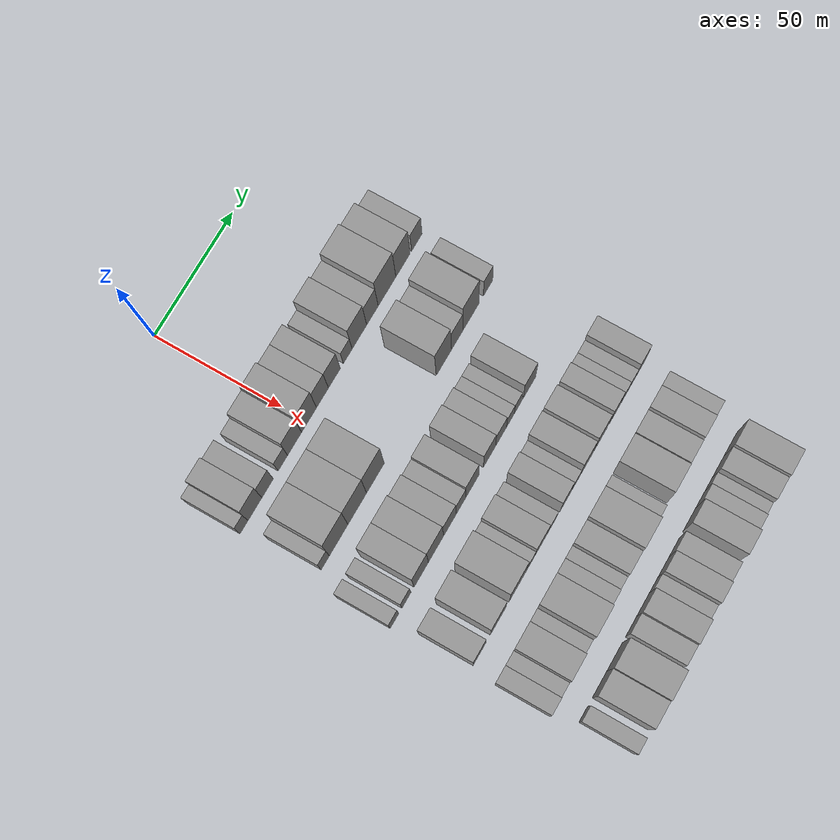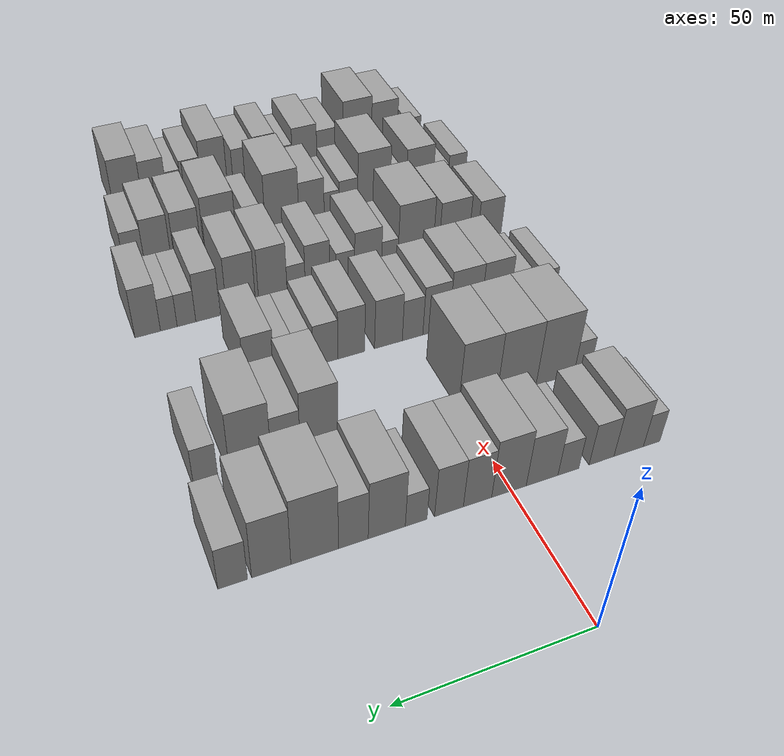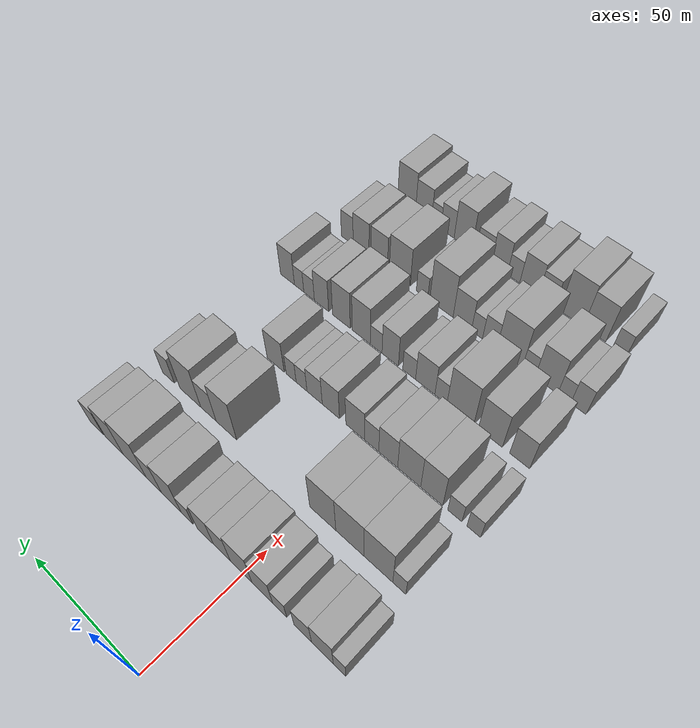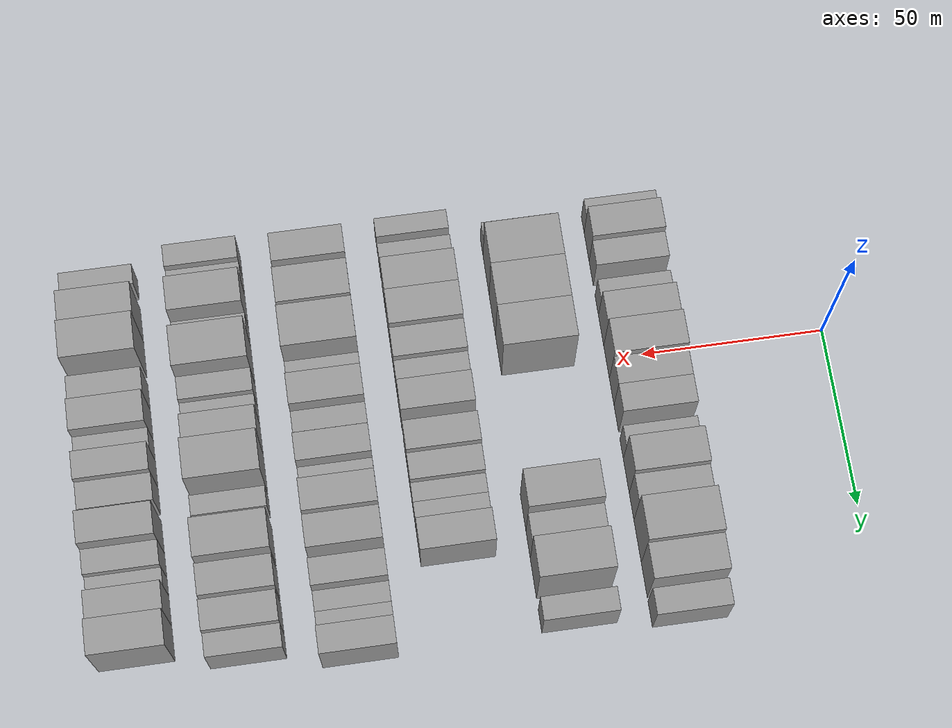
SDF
<sdf version="1.6">
 <world name="default">
  <model name="building_52">
   <static>1</static>
   <pose>50.0000 -40.4594 0 0.000000 0.000000 0.000000</pose>
   <link name="link">
    <pose>0 0 6.00 0 0 0</pose>
    <collision name="collision"><geometry><box><size>20.0000 4.9629 12.0000</size></box></geometry></collision>
    <visual name="visual">
     <cast_shadows>0</cast_shadows>
     <geometry><box><size>20.0000 4.9629 12.0000</size></box></geometry>
     <material>
      <script>
       <uri>model://grey_wall/materials/scripts</uri>
       <uri>model://grey_wall/materials/textures</uri>
       <name>vrc/grey_wall</name>
      </script>
     </material>
    </visual>
   </link>
  </model>
  <model name="building_53">
   <static>1</static>
   <pose>50.0000 -33.5909 0 0.000000 0.000000 0.000000</pose>
   <link name="link">
    <pose>0 0 9.00 0 0 0</pose>
    <collision name="collision"><geometry><box><size>20.0000 8.7740 18.0000</size></box></geometry></collision>
    <visual name="visual">
     <cast_shadows>0</cast_shadows>
     <geometry><box><size>20.0000 8.7740 18.0000</size></box></geometry>
     <material>
      <script>
       <uri>model://grey_wall/materials/scripts</uri>
       <uri>model://grey_wall/materials/textures</uri>
       <name>vrc/grey_wall</name>
      </script>
     </material>
    </visual>
   </link>
  </model>
  <model name="building_54">
   <static>1</static>
   <pose>50.0000 -25.5761 0 0.000000 0.000000 0.000000</pose>
   <link name="link">
    <pose>0 0 7.50 0 0 0</pose>
    <collision name="collision"><geometry><box><size>20.0000 7.2556 15.0000</size></box></geometry></collision>
    <visual name="visual">
     <cast_shadows>0</cast_shadows>
     <geometry><box><size>20.0000 7.2556 15.0000</size></box></geometry>
     <material>
      <script>
       <uri>model://grey_wall/materials/scripts</uri>
       <uri>model://grey_wall/materials/textures</uri>
       <name>vrc/grey_wall</name>
      </script>
     </material>
    </visual>
   </link>
  </model>
  <model name="building_55">
   <static>1</static>
   <pose>50.0000 -15.9511 0 0.000000 0.000000 0.000000</pose>
   <link name="link">
    <pose>0 0 6.00 0 0 0</pose>
    <collision name="collision"><geometry><box><size>20.0000 5.9945 12.0000</size></box></geometry></collision>
    <visual name="visual">
     <cast_shadows>0</cast_shadows>
     <geometry><box><size>20.0000 5.9945 12.0000</size></box></geometry>
     <material>
      <script>
       <uri>model://grey_wall/materials/scripts</uri>
       <uri>model://grey_wall/materials/textures</uri>
       <name>vrc/grey_wall</name>
      </script>
     </material>
    </visual>
   </link>
  </model>
  <model name="building_56">
   <static>1</static>
   <pose>50.0000 -8.4623 0 0.000000 0.000000 0.000000</pose>
   <link name="link">
    <pose>0 0 9.00 0 0 0</pose>
    <collision name="collision"><geometry><box><size>20.0000 8.9830 18.0000</size></box></geometry></collision>
    <visual name="visual">
     <cast_shadows>0</cast_shadows>
     <geometry><box><size>20.0000 8.9830 18.0000</size></box></geometry>
     <material>
      <script>
       <uri>model://grey_wall/materials/scripts</uri>
       <uri>model://grey_wall/materials/textures</uri>
       <name>vrc/grey_wall</name>
      </script>
     </material>
    </visual>
   </link>
  </model>
  <model name="building_57">
   <static>1</static>
   <pose>50.0000 0.8350 0 0.000000 0.000000 0.000000</pose>
   <link name="link">
    <pose>0 0 10.50 0 0 0</pose>
    <collision name="collision"><geometry><box><size>20.0000 9.6116 21.0000</size></box></geometry></collision>
    <visual name="visual">
     <cast_shadows>0</cast_shadows>
     <geometry><box><size>20.0000 9.6116 21.0000</size></box></geometry>
     <material>
      <script>
       <uri>model://grey_wall/materials/scripts</uri>
       <uri>model://grey_wall/materials/textures</uri>
       <name>vrc/grey_wall</name>
      </script>
     </material>
    </visual>
   </link>
  </model>
  <model name="building_58">
   <static>1</static>
   <pose>50.0000 9.5036 0 0.000000 0.000000 0.000000</pose>
   <link name="link">
    <pose>0 0 9.00 0 0 0</pose>
    <collision name="collision"><geometry><box><size>20.0000 7.7256 18.0000</size></box></geometry></collision>
    <visual name="visual">
     <cast_shadows>0</cast_shadows>
     <geometry><box><size>20.0000 7.7256 18.0000</size></box></geometry>
     <material>
      <script>
       <uri>model://grey_wall/materials/scripts</uri>
       <uri>model://grey_wall/materials/textures</uri>
       <name>vrc/grey_wall</name>
      </script>
     </material>
    </visual>
   </link>
  </model>
  <model name="building_59">
   <static>1</static>
   <pose>50.0000 17.2293 0 0.000000 0.000000 0.000000</pose>
   <link name="link">
    <pose>0 0 9.00 0 0 0</pose>
    <collision name="collision"><geometry><box><size>20.0000 7.7257 18.0000</size></box></geometry></collision>
    <visual name="visual">
     <cast_shadows>0</cast_shadows>
     <geometry><box><size>20.0000 7.7257 18.0000</size></box></geometry>
     <material>
      <script>
       <uri>model://grey_wall/materials/scripts</uri>
       <uri>model://grey_wall/materials/textures</uri>
       <name>vrc/grey_wall</name>
      </script>
     </material>
    </visual>
   </link>
  </model>
  <model name="building_60">
   <static>1</static>
   <pose>50.0000 25.9551 0 0.000000 0.000000 0.000000</pose>
   <link name="link">
    <pose>0 0 6.00 0 0 0</pose>
    <collision name="collision"><geometry><box><size>20.0000 5.7260 12.0000</size></box></geometry></collision>
    <visual name="visual">
     <cast_shadows>0</cast_shadows>
     <geometry><box><size>20.0000 5.7260 12.0000</size></box></geometry>
     <material>
      <script>
       <uri>model://grey_wall/materials/scripts</uri>
       <uri>model://grey_wall/materials/textures</uri>
       <name>vrc/grey_wall</name>
      </script>
     </material>
    </visual>
   </link>
  </model>
  <model name="building_61">
   <static>1</static>
   <pose>50.0000 33.6274 0 0.000000 0.000000 0.000000</pose>
   <link name="link">
    <pose>0 0 10.50 0 0 0</pose>
    <collision name="collision"><geometry><box><size>20.0000 9.6186 21.0000</size></box></geometry></collision>
    <visual name="visual">
     <cast_shadows>0</cast_shadows>
     <geometry><box><size>20.0000 9.6186 21.0000</size></box></geometry>
     <material>
      <script>
       <uri>model://grey_wall/materials/scripts</uri>
       <uri>model://grey_wall/materials/textures</uri>
       <name>vrc/grey_wall</name>
      </script>
     </material>
    </visual>
   </link>
  </model>
  <model name="building_62">
   <static>1</static>
   <pose>50.0000 42.2342 0 0.000000 0.000000 0.000000</pose>
   <link name="link">
    <pose>0 0 9.00 0 0 0</pose>
    <collision name="collision"><geometry><box><size>20.0000 7.5950 18.0000</size></box></geometry></collision>
    <visual name="visual">
     <cast_shadows>0</cast_shadows>
     <geometry><box><size>20.0000 7.5950 18.0000</size></box></geometry>
     <material>
      <script>
       <uri>model://grey_wall/materials/scripts</uri>
       <uri>model://grey_wall/materials/textures</uri>
       <name>vrc/grey_wall</name>
      </script>
     </material>
    </visual>
   </link>
  </model>
  <model name="building_63">
   <static>1</static>
   <pose>50.0000 51.9355 0 0.000000 0.000000 0.000000</pose>
   <link name="link">
    <pose>0 0 12.00 0 0 0</pose>
    <collision name="collision"><geometry><box><size>20.0000 11.8077 24.0000</size></box></geometry></collision>
    <visual name="visual">
     <cast_shadows>0</cast_shadows>
     <geometry><box><size>20.0000 11.8077 24.0000</size></box></geometry>
     <material>
      <script>
       <uri>model://grey_wall/materials/scripts</uri>
       <uri>model://grey_wall/materials/textures</uri>
       <name>vrc/grey_wall</name>
      </script>
     </material>
    </visual>
   </link>
  </model>
  <model name="building_64">
   <static>1</static>
   <pose>50.0000 62.6142 0 0.000000 0.000000 0.000000</pose>
   <link name="link">
    <pose>0 0 10.50 0 0 0</pose>
    <collision name="collision"><geometry><box><size>20.0000 9.5495 21.0000</size></box></geometry></collision>
    <visual name="visual">
     <cast_shadows>0</cast_shadows>
     <geometry><box><size>20.0000 9.5495 21.0000</size></box></geometry>
     <material>
      <script>
       <uri>model://grey_wall/materials/scripts</uri>
       <uri>model://grey_wall/materials/textures</uri>
       <name>vrc/grey_wall</name>
      </script>
     </material>
    </visual>
   </link>
  </model>
  <model name="building_65">
   <static>1</static>
   <pose>50.0000 71.9262 0 0.000000 0.000000 0.000000</pose>
   <link name="link">
    <pose>0 0 7.50 0 0 0</pose>
    <collision name="collision"><geometry><box><size>20.0000 7.0747 15.0000</size></box></geometry></collision>
    <visual name="visual">
     <cast_shadows>0</cast_shadows>
     <geometry><box><size>20.0000 7.0747 15.0000</size></box></geometry>
     <material>
      <script>
       <uri>model://grey_wall/materials/scripts</uri>
       <uri>model://grey_wall/materials/textures</uri>
       <name>vrc/grey_wall</name>
      </script>
     </material>
    </visual>
   </link>
  </model>
  <model name="building_163">
   <static>1</static>
   <pose>79.0000 -37.3305 0 0.000000 0.000000 0.000000</pose>
   <link name="link">
    <pose>0 0 6.00 0 0 0</pose>
    <collision name="collision"><geometry><box><size>20.0000 5.2207 12.0000</size></box></geometry></collision>
    <visual name="visual">
     <cast_shadows>0</cast_shadows>
     <geometry><box><size>20.0000 5.2207 12.0000</size></box></geometry>
     <material>
      <script>
       <uri>model://grey_wall/materials/scripts</uri>
       <uri>model://grey_wall/materials/textures</uri>
       <name>vrc/grey_wall</name>
      </script>
     </material>
    </visual>
   </link>
  </model>
  <model name="building_164">
   <static>1</static>
   <pose>79.0000 -28.7968 0 0.000000 0.000000 0.000000</pose>
   <link name="link">
    <pose>0 0 12.00 0 0 0</pose>
    <collision name="collision"><geometry><box><size>20.0000 11.8466 24.0000</size></box></geometry></collision>
    <visual name="visual">
     <cast_shadows>0</cast_shadows>
     <geometry><box><size>20.0000 11.8466 24.0000</size></box></geometry>
     <material>
      <script>
       <uri>model://grey_wall/materials/scripts</uri>
       <uri>model://grey_wall/materials/textures</uri>
       <name>vrc/grey_wall</name>
      </script>
     </material>
    </visual>
   </link>
  </model>
  <model name="building_165">
   <static>1</static>
   <pose>79.0000 -16.8841 0 0.000000 0.000000 0.000000</pose>
   <link name="link">
    <pose>0 0 12.00 0 0 0</pose>
    <collision name="collision"><geometry><box><size>20.0000 11.9790 24.0000</size></box></geometry></collision>
    <visual name="visual">
     <cast_shadows>0</cast_shadows>
     <geometry><box><size>20.0000 11.9790 24.0000</size></box></geometry>
     <material>
      <script>
       <uri>model://grey_wall/materials/scripts</uri>
       <uri>model://grey_wall/materials/textures</uri>
       <name>vrc/grey_wall</name>
      </script>
     </material>
    </visual>
   </link>
  </model>
  <model name="building_166">
   <static>1</static>
   <pose>79.0000 -5.1705 0 0.000000 0.000000 0.000000</pose>
   <link name="link">
    <pose>0 0 12.00 0 0 0</pose>
    <collision name="collision"><geometry><box><size>20.0000 11.4482 24.0000</size></box></geometry></collision>
    <visual name="visual">
     <cast_shadows>0</cast_shadows>
     <geometry><box><size>20.0000 11.4482 24.0000</size></box></geometry>
     <material>
      <script>
       <uri>model://grey_wall/materials/scripts</uri>
       <uri>model://grey_wall/materials/textures</uri>
       <name>vrc/grey_wall</name>
      </script>
     </material>
    </visual>
   </link>
  </model>
  <model name="building_167">
   <static>1</static>
   <pose>79.0000 39.8898 0 0.000000 0.000000 0.000000</pose>
   <link name="link">
    <pose>0 0 12.00 0 0 0</pose>
    <collision name="collision"><geometry><box><size>20.0000 10.2241 24.0000</size></box></geometry></collision>
    <visual name="visual">
     <cast_shadows>0</cast_shadows>
     <geometry><box><size>20.0000 10.2241 24.0000</size></box></geometry>
     <material>
      <script>
       <uri>model://grey_wall/materials/scripts</uri>
       <uri>model://grey_wall/materials/textures</uri>
       <name>vrc/grey_wall</name>
      </script>
     </material>
    </visual>
   </link>
  </model>
  <model name="building_168">
   <static>1</static>
   <pose>79.0000 48.8931 0 0.000000 0.000000 0.000000</pose>
   <link name="link">
    <pose>0 0 9.00 0 0 0</pose>
    <collision name="collision"><geometry><box><size>20.0000 7.7824 18.0000</size></box></geometry></collision>
    <visual name="visual">
     <cast_shadows>0</cast_shadows>
     <geometry><box><size>20.0000 7.7824 18.0000</size></box></geometry>
     <material>
      <script>
       <uri>model://grey_wall/materials/scripts</uri>
       <uri>model://grey_wall/materials/textures</uri>
       <name>vrc/grey_wall</name>
      </script>
     </material>
    </visual>
   </link>
  </model>
  <model name="building_169">
   <static>1</static>
   <pose>79.0000 58.2073 0 0.000000 0.000000 0.000000</pose>
   <link name="link">
    <pose>0 0 12.00 0 0 0</pose>
    <collision name="collision"><geometry><box><size>20.0000 10.8460 24.0000</size></box></geometry></collision>
    <visual name="visual">
     <cast_shadows>0</cast_shadows>
     <geometry><box><size>20.0000 10.8460 24.0000</size></box></geometry>
     <material>
      <script>
       <uri>model://grey_wall/materials/scripts</uri>
       <uri>model://grey_wall/materials/textures</uri>
       <name>vrc/grey_wall</name>
      </script>
     </material>
    </visual>
   </link>
  </model>
  <model name="building_170">
   <static>1</static>
   <pose>79.0000 69.7711 0 0.000000 0.000000 0.000000</pose>
   <link name="link">
    <pose>0 0 7.50 0 0 0</pose>
    <collision name="collision"><geometry><box><size>20.0000 6.2816 15.0000</size></box></geometry></collision>
    <visual name="visual">
     <cast_shadows>0</cast_shadows>
     <geometry><box><size>20.0000 6.2816 15.0000</size></box></geometry>
     <material>
      <script>
       <uri>model://grey_wall/materials/scripts</uri>
       <uri>model://grey_wall/materials/textures</uri>
       <name>vrc/grey_wall</name>
      </script>
     </material>
    </visual>
   </link>
  </model>
  <model name="building_272">
   <static>1</static>
   <pose>108.0000 -42.4587 0 0.000000 0.000000 0.000000</pose>
   <link name="link">
    <pose>0 0 6.00 0 0 0</pose>
    <collision name="collision"><geometry><box><size>20.0000 5.4867 12.0000</size></box></geometry></collision>
    <visual name="visual">
     <cast_shadows>0</cast_shadows>
     <geometry><box><size>20.0000 5.4867 12.0000</size></box></geometry>
     <material>
      <script>
       <uri>model://grey_wall/materials/scripts</uri>
       <uri>model://grey_wall/materials/textures</uri>
       <name>vrc/grey_wall</name>
      </script>
     </material>
    </visual>
   </link>
  </model>
  <model name="building_273">
   <static>1</static>
   <pose>108.0000 -34.8053 0 0.000000 0.000000 0.000000</pose>
   <link name="link">
    <pose>0 0 6.00 0 0 0</pose>
    <collision name="collision"><geometry><box><size>20.0000 5.8201 12.0000</size></box></geometry></collision>
    <visual name="visual">
     <cast_shadows>0</cast_shadows>
     <geometry><box><size>20.0000 5.8201 12.0000</size></box></geometry>
     <material>
      <script>
       <uri>model://grey_wall/materials/scripts</uri>
       <uri>model://grey_wall/materials/textures</uri>
       <name>vrc/grey_wall</name>
      </script>
     </material>
    </visual>
   </link>
  </model>
  <model name="building_274">
   <static>1</static>
   <pose>108.0000 -25.2712 0 0.000000 0.000000 0.000000</pose>
   <link name="link">
    <pose>0 0 10.50 0 0 0</pose>
    <collision name="collision"><geometry><box><size>20.0000 9.2482 21.0000</size></box></geometry></collision>
    <visual name="visual">
     <cast_shadows>0</cast_shadows>
     <geometry><box><size>20.0000 9.2482 21.0000</size></box></geometry>
     <material>
      <script>
       <uri>model://grey_wall/materials/scripts</uri>
       <uri>model://grey_wall/materials/textures</uri>
       <name>vrc/grey_wall</name>
      </script>
     </material>
    </visual>
   </link>
  </model>
  <model name="building_275">
   <static>1</static>
   <pose>108.0000 -15.6861 0 0.000000 0.000000 0.000000</pose>
   <link name="link">
    <pose>0 0 10.50 0 0 0</pose>
    <collision name="collision"><geometry><box><size>20.0000 9.9220 21.0000</size></box></geometry></collision>
    <visual name="visual">
     <cast_shadows>0</cast_shadows>
     <geometry><box><size>20.0000 9.9220 21.0000</size></box></geometry>
     <material>
      <script>
       <uri>model://grey_wall/materials/scripts</uri>
       <uri>model://grey_wall/materials/textures</uri>
       <name>vrc/grey_wall</name>
      </script>
     </material>
    </visual>
   </link>
  </model>
  <model name="building_276">
   <static>1</static>
   <pose>108.0000 -6.5782 0 0.000000 0.000000 0.000000</pose>
   <link name="link">
    <pose>0 0 9.00 0 0 0</pose>
    <collision name="collision"><geometry><box><size>20.0000 8.2938 18.0000</size></box></geometry></collision>
    <visual name="visual">
     <cast_shadows>0</cast_shadows>
     <geometry><box><size>20.0000 8.2938 18.0000</size></box></geometry>
     <material>
      <script>
       <uri>model://grey_wall/materials/scripts</uri>
       <uri>model://grey_wall/materials/textures</uri>
       <name>vrc/grey_wall</name>
      </script>
     </material>
    </visual>
   </link>
  </model>
  <model name="building_277">
   <static>1</static>
   <pose>108.0000 0.7625 0 0.000000 0.000000 0.000000</pose>
   <link name="link">
    <pose>0 0 7.50 0 0 0</pose>
    <collision name="collision"><geometry><box><size>20.0000 6.3876 15.0000</size></box></geometry></collision>
    <visual name="visual">
     <cast_shadows>0</cast_shadows>
     <geometry><box><size>20.0000 6.3876 15.0000</size></box></geometry>
     <material>
      <script>
       <uri>model://grey_wall/materials/scripts</uri>
       <uri>model://grey_wall/materials/textures</uri>
       <name>vrc/grey_wall</name>
      </script>
     </material>
    </visual>
   </link>
  </model>
  <model name="building_278">
   <static>1</static>
   <pose>108.0000 8.2227 0 0.000000 0.000000 0.000000</pose>
   <link name="link">
    <pose>0 0 9.00 0 0 0</pose>
    <collision name="collision"><geometry><box><size>20.0000 8.5326 18.0000</size></box></geometry></collision>
    <visual name="visual">
     <cast_shadows>0</cast_shadows>
     <geometry><box><size>20.0000 8.5326 18.0000</size></box></geometry>
     <material>
      <script>
       <uri>model://grey_wall/materials/scripts</uri>
       <uri>model://grey_wall/materials/textures</uri>
       <name>vrc/grey_wall</name>
      </script>
     </material>
    </visual>
   </link>
  </model>
  <model name="building_279">
   <static>1</static>
   <pose>108.0000 19.5371 0 0.000000 0.000000 0.000000</pose>
   <link name="link">
    <pose>0 0 9.00 0 0 0</pose>
    <collision name="collision"><geometry><box><size>20.0000 8.0962 18.0000</size></box></geometry></collision>
    <visual name="visual">
     <cast_shadows>0</cast_shadows>
     <geometry><box><size>20.0000 8.0962 18.0000</size></box></geometry>
     <material>
      <script>
       <uri>model://grey_wall/materials/scripts</uri>
       <uri>model://grey_wall/materials/textures</uri>
       <name>vrc/grey_wall</name>
      </script>
     </material>
    </visual>
   </link>
  </model>
  <model name="building_280">
   <static>1</static>
   <pose>108.0000 27.2497 0 0.000000 0.000000 0.000000</pose>
   <link name="link">
    <pose>0 0 7.50 0 0 0</pose>
    <collision name="collision"><geometry><box><size>20.0000 7.3290 15.0000</size></box></geometry></collision>
    <visual name="visual">
     <cast_shadows>0</cast_shadows>
     <geometry><box><size>20.0000 7.3290 15.0000</size></box></geometry>
     <material>
      <script>
       <uri>model://grey_wall/materials/scripts</uri>
       <uri>model://grey_wall/materials/textures</uri>
       <name>vrc/grey_wall</name>
      </script>
     </material>
    </visual>
   </link>
  </model>
  <model name="building_281">
   <static>1</static>
   <pose>108.0000 33.5649 0 0.000000 0.000000 0.000000</pose>
   <link name="link">
    <pose>0 0 6.00 0 0 0</pose>
    <collision name="collision"><geometry><box><size>20.0000 5.3012 12.0000</size></box></geometry></collision>
    <visual name="visual">
     <cast_shadows>0</cast_shadows>
     <geometry><box><size>20.0000 5.3012 12.0000</size></box></geometry>
     <material>
      <script>
       <uri>model://grey_wall/materials/scripts</uri>
       <uri>model://grey_wall/materials/textures</uri>
       <name>vrc/grey_wall</name>
      </script>
     </material>
    </visual>
   </link>
  </model>
  <model name="building_282">
   <static>1</static>
   <pose>108.0000 38.6787 0 0.000000 0.000000 0.000000</pose>
   <link name="link">
    <pose>0 0 6.00 0 0 0</pose>
    <collision name="collision"><geometry><box><size>20.0000 4.9264 12.0000</size></box></geometry></collision>
    <visual name="visual">
     <cast_shadows>0</cast_shadows>
     <geometry><box><size>20.0000 4.9264 12.0000</size></box></geometry>
     <material>
      <script>
       <uri>model://grey_wall/materials/scripts</uri>
       <uri>model://grey_wall/materials/textures</uri>
       <name>vrc/grey_wall</name>
      </script>
     </material>
    </visual>
   </link>
  </model>
  <model name="building_283">
   <static>1</static>
   <pose>108.0000 46.4441 0 0.000000 0.000000 0.000000</pose>
   <link name="link">
    <pose>0 0 9.00 0 0 0</pose>
    <collision name="collision"><geometry><box><size>20.0000 8.6044 18.0000</size></box></geometry></collision>
    <visual name="visual">
     <cast_shadows>0</cast_shadows>
     <geometry><box><size>20.0000 8.6044 18.0000</size></box></geometry>
     <material>
      <script>
       <uri>model://grey_wall/materials/scripts</uri>
       <uri>model://grey_wall/materials/textures</uri>
       <name>vrc/grey_wall</name>
      </script>
     </material>
    </visual>
   </link>
  </model>
  <model name="building_376">
   <static>1</static>
   <pose>137.0000 -38.1916 0 0.000000 0.000000 0.000000</pose>
   <link name="link">
    <pose>0 0 9.00 0 0 0</pose>
    <collision name="collision"><geometry><box><size>20.0000 8.1899 18.0000</size></box></geometry></collision>
    <visual name="visual">
     <cast_shadows>0</cast_shadows>
     <geometry><box><size>20.0000 8.1899 18.0000</size></box></geometry>
     <material>
      <script>
       <uri>model://grey_wall/materials/scripts</uri>
       <uri>model://grey_wall/materials/textures</uri>
       <name>vrc/grey_wall</name>
      </script>
     </material>
    </visual>
   </link>
  </model>
  <model name="building_377">
   <static>1</static>
   <pose>137.0000 -26.0255 0 0.000000 0.000000 0.000000</pose>
   <link name="link">
    <pose>0 0 10.50 0 0 0</pose>
    <collision name="collision"><geometry><box><size>20.0000 10.1422 21.0000</size></box></geometry></collision>
    <visual name="visual">
     <cast_shadows>0</cast_shadows>
     <geometry><box><size>20.0000 10.1422 21.0000</size></box></geometry>
     <material>
      <script>
       <uri>model://grey_wall/materials/scripts</uri>
       <uri>model://grey_wall/materials/textures</uri>
       <name>vrc/grey_wall</name>
      </script>
     </material>
    </visual>
   </link>
  </model>
  <model name="building_378">
   <static>1</static>
   <pose>137.0000 -13.1198 0 0.000000 0.000000 0.000000</pose>
   <link name="link">
    <pose>0 0 12.00 0 0 0</pose>
    <collision name="collision"><geometry><box><size>20.0000 11.6692 24.0000</size></box></geometry></collision>
    <visual name="visual">
     <cast_shadows>0</cast_shadows>
     <geometry><box><size>20.0000 11.6692 24.0000</size></box></geometry>
     <material>
      <script>
       <uri>model://grey_wall/materials/scripts</uri>
       <uri>model://grey_wall/materials/textures</uri>
       <name>vrc/grey_wall</name>
      </script>
     </material>
    </visual>
   </link>
  </model>
  <model name="building_379">
   <static>1</static>
   <pose>137.0000 -4.6001 0 0.000000 0.000000 0.000000</pose>
   <link name="link">
    <pose>0 0 6.00 0 0 0</pose>
    <collision name="collision"><geometry><box><size>20.0000 5.3702 12.0000</size></box></geometry></collision>
    <visual name="visual">
     <cast_shadows>0</cast_shadows>
     <geometry><box><size>20.0000 5.3702 12.0000</size></box></geometry>
     <material>
      <script>
       <uri>model://grey_wall/materials/scripts</uri>
       <uri>model://grey_wall/materials/textures</uri>
       <name>vrc/grey_wall</name>
      </script>
     </material>
    </visual>
   </link>
  </model>
  <model name="building_380">
   <static>1</static>
   <pose>137.0000 2.4769 0 0.000000 0.000000 0.000000</pose>
   <link name="link">
    <pose>0 0 9.00 0 0 0</pose>
    <collision name="collision"><geometry><box><size>20.0000 8.7838 18.0000</size></box></geometry></collision>
    <visual name="visual">
     <cast_shadows>0</cast_shadows>
     <geometry><box><size>20.0000 8.7838 18.0000</size></box></geometry>
     <material>
      <script>
       <uri>model://grey_wall/materials/scripts</uri>
       <uri>model://grey_wall/materials/textures</uri>
       <name>vrc/grey_wall</name>
      </script>
     </material>
    </visual>
   </link>
  </model>
  <model name="building_381">
   <static>1</static>
   <pose>137.0000 9.8508 0 0.000000 0.000000 0.000000</pose>
   <link name="link">
    <pose>0 0 6.00 0 0 0</pose>
    <collision name="collision"><geometry><box><size>20.0000 5.9640 12.0000</size></box></geometry></collision>
    <visual name="visual">
     <cast_shadows>0</cast_shadows>
     <geometry><box><size>20.0000 5.9640 12.0000</size></box></geometry>
     <material>
      <script>
       <uri>model://grey_wall/materials/scripts</uri>
       <uri>model://grey_wall/materials/textures</uri>
       <name>vrc/grey_wall</name>
      </script>
     </material>
    </visual>
   </link>
  </model>
  <model name="building_382">
   <static>1</static>
   <pose>137.0000 18.7042 0 0.000000 0.000000 0.000000</pose>
   <link name="link">
    <pose>0 0 9.00 0 0 0</pose>
    <collision name="collision"><geometry><box><size>20.0000 7.7428 18.0000</size></box></geometry></collision>
    <visual name="visual">
     <cast_shadows>0</cast_shadows>
     <geometry><box><size>20.0000 7.7428 18.0000</size></box></geometry>
     <material>
      <script>
       <uri>model://grey_wall/materials/scripts</uri>
       <uri>model://grey_wall/materials/textures</uri>
       <name>vrc/grey_wall</name>
      </script>
     </material>
    </visual>
   </link>
  </model>
  <model name="building_383">
   <static>1</static>
   <pose>137.0000 25.4113 0 0.000000 0.000000 0.000000</pose>
   <link name="link">
    <pose>0 0 6.00 0 0 0</pose>
    <collision name="collision"><geometry><box><size>20.0000 5.6713 12.0000</size></box></geometry></collision>
    <visual name="visual">
     <cast_shadows>0</cast_shadows>
     <geometry><box><size>20.0000 5.6713 12.0000</size></box></geometry>
     <material>
      <script>
       <uri>model://grey_wall/materials/scripts</uri>
       <uri>model://grey_wall/materials/textures</uri>
       <name>vrc/grey_wall</name>
      </script>
     </material>
    </visual>
   </link>
  </model>
  <model name="building_384">
   <static>1</static>
   <pose>137.0000 32.6563 0 0.000000 0.000000 0.000000</pose>
   <link name="link">
    <pose>0 0 10.50 0 0 0</pose>
    <collision name="collision"><geometry><box><size>20.0000 8.8187 21.0000</size></box></geometry></collision>
    <visual name="visual">
     <cast_shadows>0</cast_shadows>
     <geometry><box><size>20.0000 8.8187 21.0000</size></box></geometry>
     <material>
      <script>
       <uri>model://grey_wall/materials/scripts</uri>
       <uri>model://grey_wall/materials/textures</uri>
       <name>vrc/grey_wall</name>
      </script>
     </material>
    </visual>
   </link>
  </model>
  <model name="building_385">
   <static>1</static>
   <pose>137.0000 42.4761 0 0.000000 0.000000 0.000000</pose>
   <link name="link">
    <pose>0 0 10.50 0 0 0</pose>
    <collision name="collision"><geometry><box><size>20.0000 8.8211 21.0000</size></box></geometry></collision>
    <visual name="visual">
     <cast_shadows>0</cast_shadows>
     <geometry><box><size>20.0000 8.8211 21.0000</size></box></geometry>
     <material>
      <script>
       <uri>model://grey_wall/materials/scripts</uri>
       <uri>model://grey_wall/materials/textures</uri>
       <name>vrc/grey_wall</name>
      </script>
     </material>
    </visual>
   </link>
  </model>
  <model name="building_386">
   <static>1</static>
   <pose>137.0000 52.5513 0 0.000000 0.000000 0.000000</pose>
   <link name="link">
    <pose>0 0 9.00 0 0 0</pose>
    <collision name="collision"><geometry><box><size>20.0000 7.3292 18.0000</size></box></geometry></collision>
    <visual name="visual">
     <cast_shadows>0</cast_shadows>
     <geometry><box><size>20.0000 7.3292 18.0000</size></box></geometry>
     <material>
      <script>
       <uri>model://grey_wall/materials/scripts</uri>
       <uri>model://grey_wall/materials/textures</uri>
       <name>vrc/grey_wall</name>
      </script>
     </material>
    </visual>
   </link>
  </model>
  <model name="building_387">
   <static>1</static>
   <pose>137.0000 58.9819 0 0.000000 0.000000 0.000000</pose>
   <link name="link">
    <pose>0 0 6.00 0 0 0</pose>
    <collision name="collision"><geometry><box><size>20.0000 5.5321 12.0000</size></box></geometry></collision>
    <visual name="visual">
     <cast_shadows>0</cast_shadows>
     <geometry><box><size>20.0000 5.5321 12.0000</size></box></geometry>
     <material>
      <script>
       <uri>model://grey_wall/materials/scripts</uri>
       <uri>model://grey_wall/materials/textures</uri>
       <name>vrc/grey_wall</name>
      </script>
     </material>
    </visual>
   </link>
  </model>
  <model name="building_388">
   <static>1</static>
   <pose>137.0000 64.2066 0 0.000000 0.000000 0.000000</pose>
   <link name="link">
    <pose>0 0 6.00 0 0 0</pose>
    <collision name="collision"><geometry><box><size>20.0000 4.9172 12.0000</size></box></geometry></collision>
    <visual name="visual">
     <cast_shadows>0</cast_shadows>
     <geometry><box><size>20.0000 4.9172 12.0000</size></box></geometry>
     <material>
      <script>
       <uri>model://grey_wall/materials/scripts</uri>
       <uri>model://grey_wall/materials/textures</uri>
       <name>vrc/grey_wall</name>
      </script>
     </material>
    </visual>
   </link>
  </model>
  <model name="building_389">
   <static>1</static>
   <pose>137.0000 70.3898 0 0.000000 0.000000 0.000000</pose>
   <link name="link">
    <pose>0 0 9.00 0 0 0</pose>
    <collision name="collision"><geometry><box><size>20.0000 7.4493 18.0000</size></box></geometry></collision>
    <visual name="visual">
     <cast_shadows>0</cast_shadows>
     <geometry><box><size>20.0000 7.4493 18.0000</size></box></geometry>
     <material>
      <script>
       <uri>model://grey_wall/materials/scripts</uri>
       <uri>model://grey_wall/materials/textures</uri>
       <name>vrc/grey_wall</name>
      </script>
     </material>
    </visual>
   </link>
  </model>
  <model name="building_494">
   <static>1</static>
   <pose>166.0000 -40.9798 0 0.000000 0.000000 0.000000</pose>
   <link name="link">
    <pose>0 0 7.50 0 0 0</pose>
    <collision name="collision"><geometry><box><size>20.0000 6.3075 15.0000</size></box></geometry></collision>
    <visual name="visual">
     <cast_shadows>0</cast_shadows>
     <geometry><box><size>20.0000 6.3075 15.0000</size></box></geometry>
     <material>
      <script>
       <uri>model://grey_wall/materials/scripts</uri>
       <uri>model://grey_wall/materials/textures</uri>
       <name>vrc/grey_wall</name>
      </script>
     </material>
    </visual>
   </link>
  </model>
  <model name="building_495">
   <static>1</static>
   <pose>166.0000 -35.1190 0 0.000000 0.000000 0.000000</pose>
   <link name="link">
    <pose>0 0 6.00 0 0 0</pose>
    <collision name="collision"><geometry><box><size>20.0000 5.4140 12.0000</size></box></geometry></collision>
    <visual name="visual">
     <cast_shadows>0</cast_shadows>
     <geometry><box><size>20.0000 5.4140 12.0000</size></box></geometry>
     <material>
      <script>
       <uri>model://grey_wall/materials/scripts</uri>
       <uri>model://grey_wall/materials/textures</uri>
       <name>vrc/grey_wall</name>
      </script>
     </material>
    </visual>
   </link>
  </model>
  <model name="building_496">
   <static>1</static>
   <pose>166.0000 -27.5793 0 0.000000 0.000000 0.000000</pose>
   <link name="link">
    <pose>0 0 10.50 0 0 0</pose>
    <collision name="collision"><geometry><box><size>20.0000 9.6655 21.0000</size></box></geometry></collision>
    <visual name="visual">
     <cast_shadows>0</cast_shadows>
     <geometry><box><size>20.0000 9.6655 21.0000</size></box></geometry>
     <material>
      <script>
       <uri>model://grey_wall/materials/scripts</uri>
       <uri>model://grey_wall/materials/textures</uri>
       <name>vrc/grey_wall</name>
      </script>
     </material>
    </visual>
   </link>
  </model>
  <model name="building_497">
   <static>1</static>
   <pose>166.0000 -19.9623 0 0.000000 0.000000 0.000000</pose>
   <link name="link">
    <pose>0 0 6.00 0 0 0</pose>
    <collision name="collision"><geometry><box><size>20.0000 5.5683 12.0000</size></box></geometry></collision>
    <visual name="visual">
     <cast_shadows>0</cast_shadows>
     <geometry><box><size>20.0000 5.5683 12.0000</size></box></geometry>
     <material>
      <script>
       <uri>model://grey_wall/materials/scripts</uri>
       <uri>model://grey_wall/materials/textures</uri>
       <name>vrc/grey_wall</name>
      </script>
     </material>
    </visual>
   </link>
  </model>
  <model name="building_498">
   <static>1</static>
   <pose>166.0000 -11.5345 0 0.000000 0.000000 0.000000</pose>
   <link name="link">
    <pose>0 0 12.00 0 0 0</pose>
    <collision name="collision"><geometry><box><size>20.0000 11.2873 24.0000</size></box></geometry></collision>
    <visual name="visual">
     <cast_shadows>0</cast_shadows>
     <geometry><box><size>20.0000 11.2873 24.0000</size></box></geometry>
     <material>
      <script>
       <uri>model://grey_wall/materials/scripts</uri>
       <uri>model://grey_wall/materials/textures</uri>
       <name>vrc/grey_wall</name>
      </script>
     </material>
    </visual>
   </link>
  </model>
  <model name="building_499">
   <static>1</static>
   <pose>166.0000 -2.6759 0 0.000000 0.000000 0.000000</pose>
   <link name="link">
    <pose>0 0 7.50 0 0 0</pose>
    <collision name="collision"><geometry><box><size>20.0000 6.4299 15.0000</size></box></geometry></collision>
    <visual name="visual">
     <cast_shadows>0</cast_shadows>
     <geometry><box><size>20.0000 6.4299 15.0000</size></box></geometry>
     <material>
      <script>
       <uri>model://grey_wall/materials/scripts</uri>
       <uri>model://grey_wall/materials/textures</uri>
       <name>vrc/grey_wall</name>
      </script>
     </material>
    </visual>
   </link>
  </model>
  <model name="building_500">
   <static>1</static>
   <pose>166.0000 3.0605 0 0.000000 0.000000 0.000000</pose>
   <link name="link">
    <pose>0 0 6.00 0 0 0</pose>
    <collision name="collision"><geometry><box><size>20.0000 5.0429 12.0000</size></box></geometry></collision>
    <visual name="visual">
     <cast_shadows>0</cast_shadows>
     <geometry><box><size>20.0000 5.0429 12.0000</size></box></geometry>
     <material>
      <script>
       <uri>model://grey_wall/materials/scripts</uri>
       <uri>model://grey_wall/materials/textures</uri>
       <name>vrc/grey_wall</name>
      </script>
     </material>
    </visual>
   </link>
  </model>
  <model name="building_501">
   <static>1</static>
   <pose>166.0000 9.8584 0 0.000000 0.000000 0.000000</pose>
   <link name="link">
    <pose>0 0 9.00 0 0 0</pose>
    <collision name="collision"><geometry><box><size>20.0000 8.5529 18.0000</size></box></geometry></collision>
    <visual name="visual">
     <cast_shadows>0</cast_shadows>
     <geometry><box><size>20.0000 8.5529 18.0000</size></box></geometry>
     <material>
      <script>
       <uri>model://grey_wall/materials/scripts</uri>
       <uri>model://grey_wall/materials/textures</uri>
       <name>vrc/grey_wall</name>
      </script>
     </material>
    </visual>
   </link>
  </model>
  <model name="building_502">
   <static>1</static>
   <pose>166.0000 19.6974 0 0.000000 0.000000 0.000000</pose>
   <link name="link">
    <pose>0 0 12.00 0 0 0</pose>
    <collision name="collision"><geometry><box><size>20.0000 11.1250 24.0000</size></box></geometry></collision>
    <visual name="visual">
     <cast_shadows>0</cast_shadows>
     <geometry><box><size>20.0000 11.1250 24.0000</size></box></geometry>
     <material>
      <script>
       <uri>model://grey_wall/materials/scripts</uri>
       <uri>model://grey_wall/materials/textures</uri>
       <name>vrc/grey_wall</name>
      </script>
     </material>
    </visual>
   </link>
  </model>
  <model name="building_503">
   <static>1</static>
   <pose>166.0000 29.0433 0 0.000000 0.000000 0.000000</pose>
   <link name="link">
    <pose>0 0 6.00 0 0 0</pose>
    <collision name="collision"><geometry><box><size>20.0000 5.5669 12.0000</size></box></geometry></collision>
    <visual name="visual">
     <cast_shadows>0</cast_shadows>
     <geometry><box><size>20.0000 5.5669 12.0000</size></box></geometry>
     <material>
      <script>
       <uri>model://grey_wall/materials/scripts</uri>
       <uri>model://grey_wall/materials/textures</uri>
       <name>vrc/grey_wall</name>
      </script>
     </material>
    </visual>
   </link>
  </model>
  <model name="building_504">
   <static>1</static>
   <pose>166.0000 40.0652 0 0.000000 0.000000 0.000000</pose>
   <link name="link">
    <pose>0 0 10.50 0 0 0</pose>
    <collision name="collision"><geometry><box><size>20.0000 10.4769 21.0000</size></box></geometry></collision>
    <visual name="visual">
     <cast_shadows>0</cast_shadows>
     <geometry><box><size>20.0000 10.4769 21.0000</size></box></geometry>
     <material>
      <script>
       <uri>model://grey_wall/materials/scripts</uri>
       <uri>model://grey_wall/materials/textures</uri>
       <name>vrc/grey_wall</name>
      </script>
     </material>
    </visual>
   </link>
  </model>
  <model name="building_505">
   <static>1</static>
   <pose>166.0000 50.5629 0 0.000000 0.000000 0.000000</pose>
   <link name="link">
    <pose>0 0 9.00 0 0 0</pose>
    <collision name="collision"><geometry><box><size>20.0000 8.5185 18.0000</size></box></geometry></collision>
    <visual name="visual">
     <cast_shadows>0</cast_shadows>
     <geometry><box><size>20.0000 8.5185 18.0000</size></box></geometry>
     <material>
      <script>
       <uri>model://grey_wall/materials/scripts</uri>
       <uri>model://grey_wall/materials/textures</uri>
       <name>vrc/grey_wall</name>
      </script>
     </material>
    </visual>
   </link>
  </model>
  <model name="building_506">
   <static>1</static>
   <pose>166.0000 59.9392 0 0.000000 0.000000 0.000000</pose>
   <link name="link">
    <pose>0 0 9.00 0 0 0</pose>
    <collision name="collision"><geometry><box><size>20.0000 8.2341 18.0000</size></box></geometry></collision>
    <visual name="visual">
     <cast_shadows>0</cast_shadows>
     <geometry><box><size>20.0000 8.2341 18.0000</size></box></geometry>
     <material>
      <script>
       <uri>model://grey_wall/materials/scripts</uri>
       <uri>model://grey_wall/materials/textures</uri>
       <name>vrc/grey_wall</name>
      </script>
     </material>
    </visual>
   </link>
  </model>
  <model name="building_507">
   <static>1</static>
   <pose>166.0000 67.1986 0 0.000000 0.000000 0.000000</pose>
   <link name="link">
    <pose>0 0 7.50 0 0 0</pose>
    <collision name="collision"><geometry><box><size>20.0000 6.2848 15.0000</size></box></geometry></collision>
    <visual name="visual">
     <cast_shadows>0</cast_shadows>
     <geometry><box><size>20.0000 6.2848 15.0000</size></box></geometry>
     <material>
      <script>
       <uri>model://grey_wall/materials/scripts</uri>
       <uri>model://grey_wall/materials/textures</uri>
       <name>vrc/grey_wall</name>
      </script>
     </material>
    </visual>
   </link>
  </model>
  <model name="building_607">
   <static>1</static>
   <pose>195.0000 -38.2405 0 0.000000 0.000000 0.000000</pose>
   <link name="link">
    <pose>0 0 6.00 0 0 0</pose>
    <collision name="collision"><geometry><box><size>20.0000 5.7684 12.0000</size></box></geometry></collision>
    <visual name="visual">
     <cast_shadows>0</cast_shadows>
     <geometry><box><size>20.0000 5.7684 12.0000</size></box></geometry>
     <material>
      <script>
       <uri>model://grey_wall/materials/scripts</uri>
       <uri>model://grey_wall/materials/textures</uri>
       <name>vrc/grey_wall</name>
      </script>
     </material>
    </visual>
   </link>
  </model>
  <model name="building_608">
   <static>1</static>
   <pose>195.0000 -27.5354 0 0.000000 0.000000 0.000000</pose>
   <link name="link">
    <pose>0 0 10.50 0 0 0</pose>
    <collision name="collision"><geometry><box><size>20.0000 9.6418 21.0000</size></box></geometry></collision>
    <visual name="visual">
     <cast_shadows>0</cast_shadows>
     <geometry><box><size>20.0000 9.6418 21.0000</size></box></geometry>
     <material>
      <script>
       <uri>model://grey_wall/materials/scripts</uri>
       <uri>model://grey_wall/materials/textures</uri>
       <name>vrc/grey_wall</name>
      </script>
     </material>
    </visual>
   </link>
  </model>
  <model name="building_609">
   <static>1</static>
   <pose>195.0000 -17.4404 0 0.000000 0.000000 0.000000</pose>
   <link name="link">
    <pose>0 0 12.00 0 0 0</pose>
    <collision name="collision"><geometry><box><size>20.0000 10.5482 24.0000</size></box></geometry></collision>
    <visual name="visual">
     <cast_shadows>0</cast_shadows>
     <geometry><box><size>20.0000 10.5482 24.0000</size></box></geometry>
     <material>
      <script>
       <uri>model://grey_wall/materials/scripts</uri>
       <uri>model://grey_wall/materials/textures</uri>
       <name>vrc/grey_wall</name>
      </script>
     </material>
    </visual>
   </link>
  </model>
  <model name="building_610">
   <static>1</static>
   <pose>195.0000 -6.4491 0 0.000000 0.000000 0.000000</pose>
   <link name="link">
    <pose>0 0 7.50 0 0 0</pose>
    <collision name="collision"><geometry><box><size>20.0000 7.4343 15.0000</size></box></geometry></collision>
    <visual name="visual">
     <cast_shadows>0</cast_shadows>
     <geometry><box><size>20.0000 7.4343 15.0000</size></box></geometry>
     <material>
      <script>
       <uri>model://grey_wall/materials/scripts</uri>
       <uri>model://grey_wall/materials/textures</uri>
       <name>vrc/grey_wall</name>
      </script>
     </material>
    </visual>
   </link>
  </model>
  <model name="building_611">
   <static>1</static>
   <pose>195.0000 1.6309 0 0.000000 0.000000 0.000000</pose>
   <link name="link">
    <pose>0 0 9.00 0 0 0</pose>
    <collision name="collision"><geometry><box><size>20.0000 8.7257 18.0000</size></box></geometry></collision>
    <visual name="visual">
     <cast_shadows>0</cast_shadows>
     <geometry><box><size>20.0000 8.7257 18.0000</size></box></geometry>
     <material>
      <script>
       <uri>model://grey_wall/materials/scripts</uri>
       <uri>model://grey_wall/materials/textures</uri>
       <name>vrc/grey_wall</name>
      </script>
     </material>
    </visual>
   </link>
  </model>
  <model name="building_612">
   <static>1</static>
   <pose>195.0000 8.9175 0 0.000000 0.000000 0.000000</pose>
   <link name="link">
    <pose>0 0 6.00 0 0 0</pose>
    <collision name="collision"><geometry><box><size>20.0000 5.8475 12.0000</size></box></geometry></collision>
    <visual name="visual">
     <cast_shadows>0</cast_shadows>
     <geometry><box><size>20.0000 5.8475 12.0000</size></box></geometry>
     <material>
      <script>
       <uri>model://grey_wall/materials/scripts</uri>
       <uri>model://grey_wall/materials/textures</uri>
       <name>vrc/grey_wall</name>
      </script>
     </material>
    </visual>
   </link>
  </model>
  <model name="building_613">
   <static>1</static>
   <pose>195.0000 15.6586 0 0.000000 0.000000 0.000000</pose>
   <link name="link">
    <pose>0 0 9.00 0 0 0</pose>
    <collision name="collision"><geometry><box><size>20.0000 7.6346 18.0000</size></box></geometry></collision>
    <visual name="visual">
     <cast_shadows>0</cast_shadows>
     <geometry><box><size>20.0000 7.6346 18.0000</size></box></geometry>
     <material>
      <script>
       <uri>model://grey_wall/materials/scripts</uri>
       <uri>model://grey_wall/materials/textures</uri>
       <name>vrc/grey_wall</name>
      </script>
     </material>
    </visual>
   </link>
  </model>
  <model name="building_614">
   <static>1</static>
   <pose>195.0000 23.2105 0 0.000000 0.000000 0.000000</pose>
   <link name="link">
    <pose>0 0 7.50 0 0 0</pose>
    <collision name="collision"><geometry><box><size>20.0000 7.4694 15.0000</size></box></geometry></collision>
    <visual name="visual">
     <cast_shadows>0</cast_shadows>
     <geometry><box><size>20.0000 7.4694 15.0000</size></box></geometry>
     <material>
      <script>
       <uri>model://grey_wall/materials/scripts</uri>
       <uri>model://grey_wall/materials/textures</uri>
       <name>vrc/grey_wall</name>
      </script>
     </material>
    </visual>
   </link>
  </model>
  <model name="building_615">
   <static>1</static>
   <pose>195.0000 33.3360 0 0.000000 0.000000 0.000000</pose>
   <link name="link">
    <pose>0 0 10.50 0 0 0</pose>
    <collision name="collision"><geometry><box><size>20.0000 8.7815 21.0000</size></box></geometry></collision>
    <visual name="visual">
     <cast_shadows>0</cast_shadows>
     <geometry><box><size>20.0000 8.7815 21.0000</size></box></geometry>
     <material>
      <script>
       <uri>model://grey_wall/materials/scripts</uri>
       <uri>model://grey_wall/materials/textures</uri>
       <name>vrc/grey_wall</name>
      </script>
     </material>
    </visual>
   </link>
  </model>
  <model name="building_616">
   <static>1</static>
   <pose>195.0000 41.0913 0 0.000000 0.000000 0.000000</pose>
   <link name="link">
    <pose>0 0 7.50 0 0 0</pose>
    <collision name="collision"><geometry><box><size>20.0000 6.7292 15.0000</size></box></geometry></collision>
    <visual name="visual">
     <cast_shadows>0</cast_shadows>
     <geometry><box><size>20.0000 6.7292 15.0000</size></box></geometry>
     <material>
      <script>
       <uri>model://grey_wall/materials/scripts</uri>
       <uri>model://grey_wall/materials/textures</uri>
       <name>vrc/grey_wall</name>
      </script>
     </material>
    </visual>
   </link>
  </model>
  <model name="building_617">
   <static>1</static>
   <pose>195.0000 46.9064 0 0.000000 0.000000 0.000000</pose>
   <link name="link">
    <pose>0 0 6.00 0 0 0</pose>
    <collision name="collision"><geometry><box><size>20.0000 4.9011 12.0000</size></box></geometry></collision>
    <visual name="visual">
     <cast_shadows>0</cast_shadows>
     <geometry><box><size>20.0000 4.9011 12.0000</size></box></geometry>
     <material>
      <script>
       <uri>model://grey_wall/materials/scripts</uri>
       <uri>model://grey_wall/materials/textures</uri>
       <name>vrc/grey_wall</name>
      </script>
     </material>
    </visual>
   </link>
  </model>
  <model name="building_618">
   <static>1</static>
   <pose>195.0000 53.4511 0 0.000000 0.000000 0.000000</pose>
   <link name="link">
    <pose>0 0 9.00 0 0 0</pose>
    <collision name="collision"><geometry><box><size>20.0000 8.1882 18.0000</size></box></geometry></collision>
    <visual name="visual">
     <cast_shadows>0</cast_shadows>
     <geometry><box><size>20.0000 8.1882 18.0000</size></box></geometry>
     <material>
      <script>
       <uri>model://grey_wall/materials/scripts</uri>
       <uri>model://grey_wall/materials/textures</uri>
       <name>vrc/grey_wall</name>
      </script>
     </material>
    </visual>
   </link>
  </model>
  <model name="building_619">
   <static>1</static>
   <pose>195.0000 62.2831 0 0.000000 0.000000 0.000000</pose>
   <link name="link">
    <pose>0 0 10.50 0 0 0</pose>
    <collision name="collision"><geometry><box><size>20.0000 9.4758 21.0000</size></box></geometry></collision>
    <visual name="visual">
     <cast_shadows>0</cast_shadows>
     <geometry><box><size>20.0000 9.4758 21.0000</size></box></geometry>
     <material>
      <script>
       <uri>model://grey_wall/materials/scripts</uri>
       <uri>model://grey_wall/materials/textures</uri>
       <name>vrc/grey_wall</name>
      </script>
     </material>
    </visual>
   </link>
  </model>
 </world>
</sdf>
